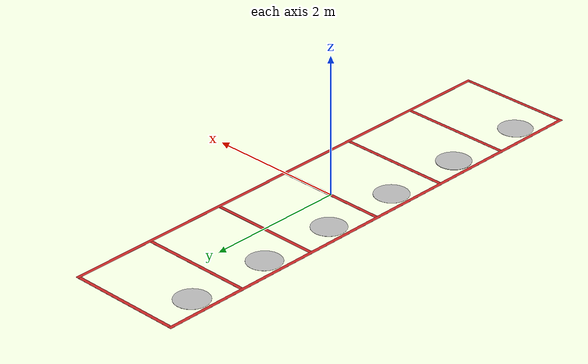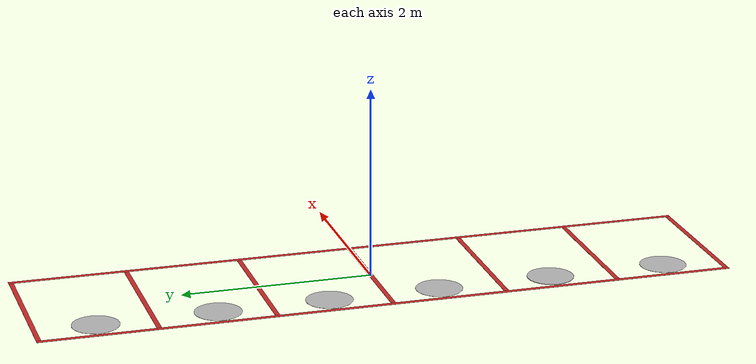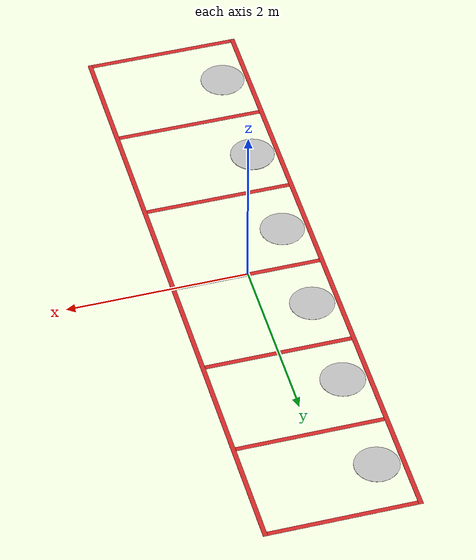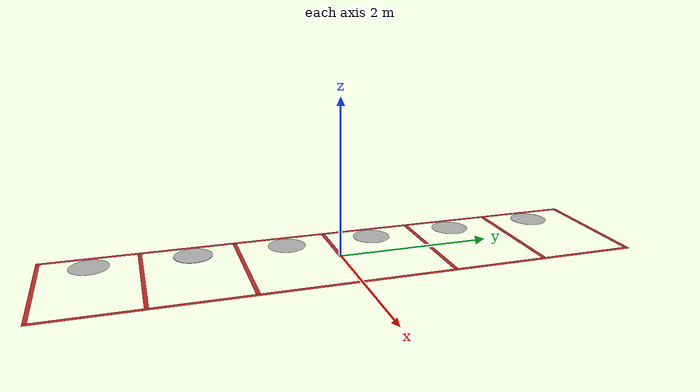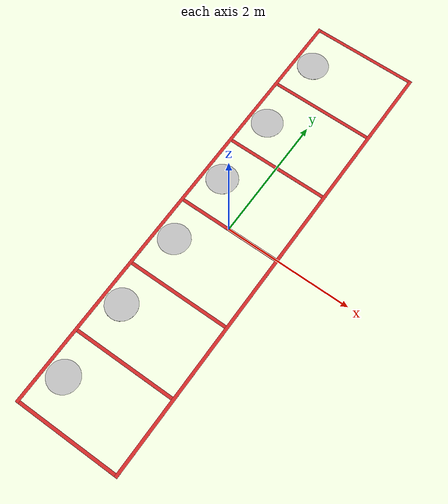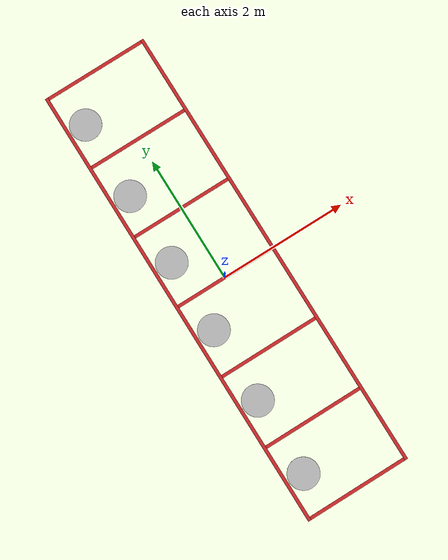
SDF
<?xml version='1.0'?>
<sdf version='1.6'>
  <model name='parkingArea_720x160'>
    <link name='link_3'>
      <inertial>
        <mass>1</mass>
        <inertia>
          <ixx>0.166667</ixx>
          <ixy>0</ixy>
          <ixz>0</ixz>
          <iyy>0.166667</iyy>
          <iyz>0</iyz>
          <izz>0.166667</izz>
        </inertia>
        <pose frame=''>0 0 0 0 -0 0</pose>
      </inertial>
      <pose frame=''>0 0 0 0 -0 0</pose>
      <gravity>1</gravity>
      <self_collide>0</self_collide>
      <kinematic>0</kinematic>
      <enable_wind>0</enable_wind>
      <visual name='visual'>
        <pose frame=''>0.825 0 0 0 -0 0</pose>
        <geometry>
          <box>
            <size>0.05 7.25 0.001</size>
          </box>
        </geometry>
        <material>
          <lighting>1</lighting>
          <script>
            <uri>file://media/materials/scripts/gazebo.material</uri>
            <name>Gazebo/Red</name>
          </script>
	 </material>
      </visual>
      <visual name='ModelPreview_6::link_3::visual_1'>
        <pose frame=''>-0.825 0 0 0 -0 0</pose>
        <geometry>
          <box>
            <size>0.05 7.25 0.001</size>
          </box>
        </geometry>
        <material>
          <lighting>1</lighting>
          <script>
            <uri>file://media/materials/scripts/gazebo.material</uri>
            <name>Gazebo/Red</name>
          </script>
        </material>
      </visual>
      <visual name='ModelPreview_6::link_3::visual_2'>
        <pose frame=''>0 3.6 0 0 -0 0</pose>
        <geometry>
          <box>
            <size>1.6 0.05 0.001</size>
          </box>
        </geometry>
        <material>
          <lighting>1</lighting>
          <script>
            <uri>file://media/materials/scripts/gazebo.material</uri>
            <name>Gazebo/Red</name>
          </script>
        </material>
      </visual>
      <visual name='ModelPreview_6::link_3::visual_3'>
        <pose frame=''>0 -3.6 0 0 -0 0</pose>
        <geometry>
          <box>
            <size>1.6 0.05 0.001</size>
          </box>
        </geometry>
        <material>
          <lighting>1</lighting>
          <script>
            <uri>file://media/materials/scripts/gazebo.material</uri>
            <name>Gazebo/Red</name>
          </script>
        </material>
      </visual>
      <visual name='ModelPreview_6::link_3::visual_4'>
        <pose frame=''>0 -2.4 0 0 -0 0</pose>
        <geometry>
          <box>
            <size>1.6 0.05 0.001</size>
          </box>
        </geometry>
        <material>
          <lighting>1</lighting>
          <script>
            <uri>file://media/materials/scripts/gazebo.material</uri>
            <name>Gazebo/Red</name>
          </script>
        </material>
      </visual>
      <visual name='ModelPreview_6::link_3::visual_5'>
        <pose frame=''>0 -1.2 0 0 -0 0</pose>
        <geometry>
          <box>
            <size>1.6 0.05 0.001</size>
          </box>
        </geometry>
        <material>
          <lighting>1</lighting>
          <script>
            <uri>file://media/materials/scripts/gazebo.material</uri>
            <name>Gazebo/Red</name>
          </script>
        </material>
      </visual>
      <visual name='ModelPreview_6::link_3::visual_6'>
        <pose frame=''>0 0 0 0 -0 0</pose>
        <geometry>
          <box>
            <size>1.6 0.05 0.001</size>
          </box>
        </geometry>
        <material>
          <lighting>1</lighting>
          <script>
            <uri>file://media/materials/scripts/gazebo.material</uri>
            <name>Gazebo/Red</name>
          </script>
        </material>
      </visual>
      <visual name='ModelPreview_6::link_3::visual_7'>
        <pose frame=''>0 1.2 0 0 -0 0</pose>
        <geometry>
          <box>
            <size>1.6 0.05 0.001</size>
          </box>
        </geometry>
        <material>
          <lighting>1</lighting>
          <script>
            <uri>file://media/materials/scripts/gazebo.material</uri>
            <name>Gazebo/Red</name>
          </script>
        </material>
      </visual>
      <visual name='ModelPreview_6::link_3::visual_8'>
        <pose frame=''>0 2.4 0 0 -0 0</pose>
        <geometry>
          <box>
            <size>1.6 0.05 0.001</size>
          </box>
        </geometry>
        <material>
          <lighting>1</lighting>
          <script>
            <uri>file://media/materials/scripts/gazebo.material</uri>
            <name>Gazebo/Red</name>
          </script>
        </material>
      </visual>
      <visual name='ModelPreview_6::link_3::visual_9'>
        <pose frame=''>-0.47 2.65 0 0 -0 1</pose>
        <geometry>
	   <mesh>
             <uri>model://parkingArea_720x160/model/model.dae</uri>
             <scale>0.266 0.266 0.266</scale>
           </mesh>
        </geometry>
        <material>
          <lighting>1</lighting>
        </material>
      </visual>
      <visual name='ModelPreview_6::link_3::visual_10'>
        <pose frame=''>-0.47 1.41 0 0 -0 1</pose>
        <geometry>
	   <mesh>
             <uri>model://parkingArea_720x160/model/model.dae</uri>
             <scale>0.266 0.266 0.266</scale>
           </mesh>
        </geometry>
        <material>
          <lighting>1</lighting>
        </material>
      </visual>
      <visual name='ModelPreview_6::link_3::visual_11'>
        <pose frame=''>-0.47 0.26 0 0 -0 1</pose>
        <geometry>
	   <mesh>
             <uri>model://parkingArea_720x160/model/model.dae</uri>
             <scale>0.266 0.266 0.266</scale>
           </mesh>
        </geometry>
        <material>
          <lighting>1</lighting>
        </material>
      </visual>
      <visual name='ModelPreview_6::link_3::visual_12'>
        <pose frame=''>-0.47 -0.9 0 0 -0 1</pose>
        <geometry>
	   <mesh>
             <uri>model://parkingArea_720x160/model/model.dae</uri>
             <scale>0.266 0.266 0.266</scale>
           </mesh>
        </geometry>
        <material>
          <lighting>1</lighting>
        </material>
      </visual>
      <visual name='ModelPreview_6::link_3::visual_13'>
        <pose frame=''>-0.47 -2.1 0 0 -0 1</pose>
        <geometry>
	   <mesh>
             <uri>model://parkingArea_720x160/model/model.dae</uri>
             <scale>0.266 0.266 0.8266</scale>
           </mesh>
        </geometry>
        <material>
          <lighting>1</lighting>
        </material>
      </visual>
      <visual name='ModelPreview_6::link_3::visual_14'>
        <pose frame=''>-0.47 -3.34 0 0 -0 1</pose>
        <geometry>
	   <mesh>
             <uri>model://parkingArea_720x160/model/model.dae</uri>
             <scale>0.266 0.266 0.266</scale>
           </mesh>
        </geometry>

      </visual>
      <collision name='collision'>
        <laser_retro>0</laser_retro>
        <max_contacts>10</max_contacts>
        <pose frame=''>1 0 0 0 -0 0</pose>
        <geometry>
          <box>
            <size>0.05 9 0.00001</size>
          </box>
        </geometry>
        <surface>
          <friction>
            <ode>
              <mu>1</mu>
              <mu2>1</mu2>
              <fdir1>0 0 0</fdir1>
              <slip1>0</slip1>
              <slip2>0</slip2>
            </ode>
            <torsional>
              <coefficient>1</coefficient>
              <patch_radius>0</patch_radius>
              <surface_radius>0</surface_radius>
              <use_patch_radius>1</use_patch_radius>
              <ode>
                <slip>0</slip>
              </ode>
            </torsional>
          </friction>
          <bounce>
            <restitution_coefficient>0</restitution_coefficient>
            <threshold>1e+06</threshold>
          </bounce>
          <contact>
            <collide_without_contact>0</collide_without_contact>
            <collide_without_contact_bitmask>1</collide_without_contact_bitmask>
            <collide_bitmask>1</collide_bitmask>
            <ode>
              <soft_cfm>0</soft_cfm>
              <soft_erp>0.2</soft_erp>
              <kp>1e+13</kp>
              <kd>1</kd>
              <max_vel>0.01</max_vel>
              <min_depth>0</min_depth>
            </ode>
            <bullet>
              <split_impulse>1</split_impulse>
              <split_impulse_penetration_threshold>-0.01</split_impulse_penetration_threshold>
              <soft_cfm>0</soft_cfm>
              <soft_erp>0.2</soft_erp>
              <kp>1e+13</kp>
              <kd>1</kd>
            </bullet>
          </contact>
        </surface>
      </collision>
      <collision name='collision_1'>
        <laser_retro>0</laser_retro>
        <max_contacts>10</max_contacts>
        <pose frame=''>-1 0 0 0 -0 0</pose>
        <geometry>
          <box>
            <size>0.05 9 0.00001</size>
          </box>
        </geometry>
        <surface>
          <friction>
            <ode>
              <mu>1</mu>
              <mu2>1</mu2>
              <fdir1>0 0 0</fdir1>
              <slip1>0</slip1>
              <slip2>0</slip2>
            </ode>
            <torsional>
              <coefficient>1</coefficient>
              <patch_radius>0</patch_radius>
              <surface_radius>0</surface_radius>
              <use_patch_radius>1</use_patch_radius>
              <ode>
                <slip>0</slip>
              </ode>
            </torsional>
          </friction>
          <bounce>
            <restitution_coefficient>0</restitution_coefficient>
            <threshold>1e+06</threshold>
          </bounce>
          <contact>
            <collide_without_contact>0</collide_without_contact>
            <collide_without_contact_bitmask>1</collide_without_contact_bitmask>
            <collide_bitmask>1</collide_bitmask>
            <ode>
              <soft_cfm>0</soft_cfm>
              <soft_erp>0.2</soft_erp>
              <kp>1e+13</kp>
              <kd>1</kd>
              <max_vel>0.01</max_vel>
              <min_depth>0</min_depth>
            </ode>
            <bullet>
              <split_impulse>1</split_impulse>
              <split_impulse_penetration_threshold>-0.01</split_impulse_penetration_threshold>
              <soft_cfm>0</soft_cfm>
              <soft_erp>0.2</soft_erp>
              <kp>1e+13</kp>
              <kd>1</kd>
            </bullet>
          </contact>
        </surface>
      </collision>
      <collision name='collision_2'>
        <laser_retro>0</laser_retro>
        <max_contacts>10</max_contacts>
        <pose frame=''>0 4.5 0 0 -0 0</pose>
        <geometry>
          <box>
            <size>1.6 0.05 0.00001</size>
          </box>
        </geometry>
        <surface>
          <friction>
            <ode>
              <mu>1</mu>
              <mu2>1</mu2>
              <fdir1>0 0 0</fdir1>
              <slip1>0</slip1>
              <slip2>0</slip2>
            </ode>
            <torsional>
              <coefficient>1</coefficient>
              <patch_radius>0</patch_radius>
              <surface_radius>0</surface_radius>
              <use_patch_radius>1</use_patch_radius>
              <ode>
                <slip>0</slip>
              </ode>
            </torsional>
          </friction>
          <bounce>
            <restitution_coefficient>0</restitution_coefficient>
            <threshold>1e+06</threshold>
          </bounce>
          <contact>
            <collide_without_contact>0</collide_without_contact>
            <collide_without_contact_bitmask>1</collide_without_contact_bitmask>
            <collide_bitmask>1</collide_bitmask>
            <ode>
              <soft_cfm>0</soft_cfm>
              <soft_erp>0.2</soft_erp>
              <kp>1e+13</kp>
              <kd>1</kd>
              <max_vel>0.01</max_vel>
              <min_depth>0</min_depth>
            </ode>
            <bullet>
              <split_impulse>1</split_impulse>
              <split_impulse_penetration_threshold>-0.01</split_impulse_penetration_threshold>
              <soft_cfm>0</soft_cfm>
              <soft_erp>0.2</soft_erp>
              <kp>1e+13</kp>
              <kd>1</kd>
            </bullet>
          </contact>
        </surface>
      </collision>
      <collision name='collision_3'>
        <laser_retro>0</laser_retro>
        <max_contacts>10</max_contacts>
        <pose frame=''>0 3 0 0 -0 0</pose>
        <geometry>
          <box>
            <size>1.6 0.05 0.00001</size>
          </box>
        </geometry>
        <surface>
          <friction>
            <ode>
              <mu>1</mu>
              <mu2>1</mu2>
              <fdir1>0 0 0</fdir1>
              <slip1>0</slip1>
              <slip2>0</slip2>
            </ode>
            <torsional>
              <coefficient>1</coefficient>
              <patch_radius>0</patch_radius>
              <surface_radius>0</surface_radius>
              <use_patch_radius>1</use_patch_radius>
              <ode>
                <slip>0</slip>
              </ode>
            </torsional>
          </friction>
          <bounce>
            <restitution_coefficient>0</restitution_coefficient>
            <threshold>1e+06</threshold>
          </bounce>
          <contact>
            <collide_without_contact>0</collide_without_contact>
            <collide_without_contact_bitmask>1</collide_without_contact_bitmask>
            <collide_bitmask>1</collide_bitmask>
            <ode>
              <soft_cfm>0</soft_cfm>
              <soft_erp>0.2</soft_erp>
              <kp>1e+13</kp>
              <kd>1</kd>
              <max_vel>0.01</max_vel>
              <min_depth>0</min_depth>
            </ode>
            <bullet>
              <split_impulse>1</split_impulse>
              <split_impulse_penetration_threshold>-0.01</split_impulse_penetration_threshold>
              <soft_cfm>0</soft_cfm>
              <soft_erp>0.2</soft_erp>
              <kp>1e+13</kp>
              <kd>1</kd>
            </bullet>
          </contact>
        </surface>
      </collision>
      <collision name='collision_4'>
        <laser_retro>0</laser_retro>
        <max_contacts>10</max_contacts>
        <pose frame=''>0 1.5 0 0 -0 0</pose>
        <geometry>
          <box>
            <size>1.6 0.05 0.00001</size>
          </box>
        </geometry>
        <surface>
          <friction>
            <ode>
              <mu>1</mu>
              <mu2>1</mu2>
              <fdir1>0 0 0</fdir1>
              <slip1>0</slip1>
              <slip2>0</slip2>
            </ode>
            <torsional>
              <coefficient>1</coefficient>
              <patch_radius>0</patch_radius>
              <surface_radius>0</surface_radius>
              <use_patch_radius>1</use_patch_radius>
              <ode>
                <slip>0</slip>
              </ode>
            </torsional>
          </friction>
          <bounce>
            <restitution_coefficient>0</restitution_coefficient>
            <threshold>1e+06</threshold>
          </bounce>
          <contact>
            <collide_without_contact>0</collide_without_contact>
            <collide_without_contact_bitmask>1</collide_without_contact_bitmask>
            <collide_bitmask>1</collide_bitmask>
            <ode>
              <soft_cfm>0</soft_cfm>
              <soft_erp>0.2</soft_erp>
              <kp>1e+13</kp>
              <kd>1</kd>
              <max_vel>0.01</max_vel>
              <min_depth>0</min_depth>
            </ode>
            <bullet>
              <split_impulse>1</split_impulse>
              <split_impulse_penetration_threshold>-0.01</split_impulse_penetration_threshold>
              <soft_cfm>0</soft_cfm>
              <soft_erp>0.2</soft_erp>
              <kp>1e+13</kp>
              <kd>1</kd>
            </bullet>
          </contact>
        </surface>
      </collision>
      <collision name='collision_5'>
        <laser_retro>0</laser_retro>
        <max_contacts>10</max_contacts>
        <pose frame=''>0 0 0 0 -0 0</pose>
        <geometry>
          <box>
            <size>1.6 0.05 0.00001</size>
          </box>
        </geometry>
        <surface>
          <friction>
            <ode>
              <mu>1</mu>
              <mu2>1</mu2>
              <fdir1>0 0 0</fdir1>
              <slip1>0</slip1>
              <slip2>0</slip2>
            </ode>
            <torsional>
              <coefficient>1</coefficient>
              <patch_radius>0</patch_radius>
              <surface_radius>0</surface_radius>
              <use_patch_radius>1</use_patch_radius>
              <ode>
                <slip>0</slip>
              </ode>
            </torsional>
          </friction>
          <bounce>
            <restitution_coefficient>0</restitution_coefficient>
            <threshold>1e+06</threshold>
          </bounce>
          <contact>
            <collide_without_contact>0</collide_without_contact>
            <collide_without_contact_bitmask>1</collide_without_contact_bitmask>
            <collide_bitmask>1</collide_bitmask>
            <ode>
              <soft_cfm>0</soft_cfm>
              <soft_erp>0.2</soft_erp>
              <kp>1e+13</kp>
              <kd>1</kd>
              <max_vel>0.01</max_vel>
              <min_depth>0</min_depth>
            </ode>
            <bullet>
              <split_impulse>1</split_impulse>
              <split_impulse_penetration_threshold>-0.01</split_impulse_penetration_threshold>
              <soft_cfm>0</soft_cfm>
              <soft_erp>0.2</soft_erp>
              <kp>1e+13</kp>
              <kd>1</kd>
            </bullet>
          </contact>
        </surface>
      </collision>
      <collision name='collision_6'>
        <laser_retro>0</laser_retro>
        <max_contacts>10</max_contacts>
        <pose frame=''>0 -1.5 0 0 -0 0</pose>
        <geometry>
          <box>
            <size>1.6 0.05 0.00001</size>
          </box>
        </geometry>
        <surface>
          <friction>
            <ode>
              <mu>1</mu>
              <mu2>1</mu2>
              <fdir1>0 0 0</fdir1>
              <slip1>0</slip1>
              <slip2>0</slip2>
            </ode>
            <torsional>
              <coefficient>1</coefficient>
              <patch_radius>0</patch_radius>
              <surface_radius>0</surface_radius>
              <use_patch_radius>1</use_patch_radius>
              <ode>
                <slip>0</slip>
              </ode>
            </torsional>
          </friction>
          <bounce>
            <restitution_coefficient>0</restitution_coefficient>
            <threshold>1e+06</threshold>
          </bounce>
          <contact>
            <collide_without_contact>0</collide_without_contact>
            <collide_without_contact_bitmask>1</collide_without_contact_bitmask>
            <collide_bitmask>1</collide_bitmask>
            <ode>
              <soft_cfm>0</soft_cfm>
              <soft_erp>0.2</soft_erp>
              <kp>1e+13</kp>
              <kd>1</kd>
              <max_vel>0.01</max_vel>
              <min_depth>0</min_depth>
            </ode>
            <bullet>
              <split_impulse>1</split_impulse>
              <split_impulse_penetration_threshold>-0.01</split_impulse_penetration_threshold>
              <soft_cfm>0</soft_cfm>
              <soft_erp>0.2</soft_erp>
              <kp>1e+13</kp>
              <kd>1</kd>
            </bullet>
          </contact>
        </surface>
      </collision>
      <collision name='collision_7'>
        <laser_retro>0</laser_retro>
        <max_contacts>10</max_contacts>
        <pose frame=''>0 -3 0 0 -0 0</pose>
        <geometry>
          <box>
            <size>1.6 0.05 0.00001</size>
          </box>
        </geometry>
        <surface>
          <friction>
            <ode>
              <mu>1</mu>
              <mu2>1</mu2>
              <fdir1>0 0 0</fdir1>
              <slip1>0</slip1>
              <slip2>0</slip2>
            </ode>
            <torsional>
              <coefficient>1</coefficient>
              <patch_radius>0</patch_radius>
              <surface_radius>0</surface_radius>
              <use_patch_radius>1</use_patch_radius>
              <ode>
                <slip>0</slip>
              </ode>
            </torsional>
          </friction>
          <bounce>
            <restitution_coefficient>0</restitution_coefficient>
            <threshold>1e+06</threshold>
          </bounce>
          <contact>
            <collide_without_contact>0</collide_without_contact>
            <collide_without_contact_bitmask>1</collide_without_contact_bitmask>
            <collide_bitmask>1</collide_bitmask>
            <ode>
              <soft_cfm>0</soft_cfm>
              <soft_erp>0.2</soft_erp>
              <kp>1e+13</kp>
              <kd>1</kd>
              <max_vel>0.01</max_vel>
              <min_depth>0</min_depth>
            </ode>
            <bullet>
              <split_impulse>1</split_impulse>
              <split_impulse_penetration_threshold>-0.01</split_impulse_penetration_threshold>
              <soft_cfm>0</soft_cfm>
              <soft_erp>0.2</soft_erp>
              <kp>1e+13</kp>
              <kd>1</kd>
            </bullet>
          </contact>
        </surface>
      </collision>
      <collision name='collision_8'>
        <laser_retro>0</laser_retro>
        <max_contacts>10</max_contacts>
        <pose frame=''>0 -4.5 0 0 -0 0</pose>
        <geometry>
          <box>
            <size>1.6 0.05 0.00001</size>
          </box>
        </geometry>
        <surface>
          <friction>
            <ode>
              <mu>1</mu>
              <mu2>1</mu2>
              <fdir1>0 0 0</fdir1>
              <slip1>0</slip1>
              <slip2>0</slip2>
            </ode>
            <torsional>
              <coefficient>1</coefficient>
              <patch_radius>0</patch_radius>
              <surface_radius>0</surface_radius>
              <use_patch_radius>1</use_patch_radius>
              <ode>
                <slip>0</slip>
              </ode>
            </torsional>
          </friction>
          <bounce>
            <restitution_coefficient>0</restitution_coefficient>
            <threshold>1e+06</threshold>
          </bounce>
          <contact>
            <collide_without_contact>0</collide_without_contact>
            <collide_without_contact_bitmask>1</collide_without_contact_bitmask>
            <collide_bitmask>1</collide_bitmask>
            <ode>
              <soft_cfm>0</soft_cfm>
              <soft_erp>0.2</soft_erp>
              <kp>1e+13</kp>
              <kd>1</kd>
              <max_vel>0.01</max_vel>
              <min_depth>0</min_depth>
            </ode>
            <bullet>
              <split_impulse>1</split_impulse>
              <split_impulse_penetration_threshold>-0.01</split_impulse_penetration_threshold>
              <soft_cfm>0</soft_cfm>
              <soft_erp>0.2</soft_erp>
              <kp>1e+13</kp>
              <kd>1</kd>
            </bullet>
          </contact>
        </surface>
      </collision>
      <collision name='collision_9'>
        <laser_retro>0</laser_retro>
        <max_contacts>10</max_contacts>
        <pose frame=''>-0.65 3.75 0 0 -0 0</pose>
        <geometry>
          <cylinder>
            <radius>0.25</radius>
            <length>0.00001</length>
          </cylinder>
        </geometry>
        <surface>
          <friction>
            <ode>
              <mu>1</mu>
              <mu2>1</mu2>
              <fdir1>0 0 0</fdir1>
              <slip1>0</slip1>
              <slip2>0</slip2>
            </ode>
            <torsional>
              <coefficient>1</coefficient>
              <patch_radius>0</patch_radius>
              <surface_radius>0</surface_radius>
              <use_patch_radius>1</use_patch_radius>
              <ode>
                <slip>0</slip>
              </ode>
            </torsional>
          </friction>
          <bounce>
            <restitution_coefficient>0</restitution_coefficient>
            <threshold>1e+06</threshold>
          </bounce>
          <contact>
            <collide_without_contact>0</collide_without_contact>
            <collide_without_contact_bitmask>1</collide_without_contact_bitmask>
            <collide_bitmask>1</collide_bitmask>
            <ode>
              <soft_cfm>0</soft_cfm>
              <soft_erp>0.2</soft_erp>
              <kp>1e+13</kp>
              <kd>1</kd>
              <max_vel>0.01</max_vel>
              <min_depth>0</min_depth>
            </ode>
            <bullet>
              <split_impulse>1</split_impulse>
              <split_impulse_penetration_threshold>-0.01</split_impulse_penetration_threshold>
              <soft_cfm>0</soft_cfm>
              <soft_erp>0.2</soft_erp>
              <kp>1e+13</kp>
              <kd>1</kd>
            </bullet>
          </contact>
        </surface>
      </collision>
      <collision name='collision_10'>
        <laser_retro>0</laser_retro>
        <max_contacts>10</max_contacts>
        <pose frame=''>-0.65 2.25 0 0 -0 0</pose>
        <geometry>
          <cylinder>
            <radius>0.25</radius>
            <length>0.00001</length>
          </cylinder>
        </geometry>
        <surface>
          <friction>
            <ode>
              <mu>1</mu>
              <mu2>1</mu2>
              <fdir1>0 0 0</fdir1>
              <slip1>0</slip1>
              <slip2>0</slip2>
            </ode>
            <torsional>
              <coefficient>1</coefficient>
              <patch_radius>0</patch_radius>
              <surface_radius>0</surface_radius>
              <use_patch_radius>1</use_patch_radius>
              <ode>
                <slip>0</slip>
              </ode>
            </torsional>
          </friction>
          <bounce>
            <restitution_coefficient>0</restitution_coefficient>
            <threshold>1e+06</threshold>
          </bounce>
          <contact>
            <collide_without_contact>0</collide_without_contact>
            <collide_without_contact_bitmask>1</collide_without_contact_bitmask>
            <collide_bitmask>1</collide_bitmask>
            <ode>
              <soft_cfm>0</soft_cfm>
              <soft_erp>0.2</soft_erp>
              <kp>1e+13</kp>
              <kd>1</kd>
              <max_vel>0.01</max_vel>
              <min_depth>0</min_depth>
            </ode>
            <bullet>
              <split_impulse>1</split_impulse>
              <split_impulse_penetration_threshold>-0.01</split_impulse_penetration_threshold>
              <soft_cfm>0</soft_cfm>
              <soft_erp>0.2</soft_erp>
              <kp>1e+13</kp>
              <kd>1</kd>
            </bullet>
          </contact>
        </surface>
      </collision>
      <collision name='collision_11'>
        <laser_retro>0</laser_retro>
        <max_contacts>10</max_contacts>
        <pose frame=''>-0.65 0.75 0 0 -0 0</pose>
        <geometry>
          <cylinder>
            <radius>0.25</radius>
            <length>0.00001</length>
          </cylinder>
        </geometry>
        <surface>
          <friction>
            <ode>
              <mu>1</mu>
              <mu2>1</mu2>
              <fdir1>0 0 0</fdir1>
              <slip1>0</slip1>
              <slip2>0</slip2>
            </ode>
            <torsional>
              <coefficient>1</coefficient>
              <patch_radius>0</patch_radius>
              <surface_radius>0</surface_radius>
              <use_patch_radius>1</use_patch_radius>
              <ode>
                <slip>0</slip>
              </ode>
            </torsional>
          </friction>
          <bounce>
            <restitution_coefficient>0</restitution_coefficient>
            <threshold>1e+06</threshold>
          </bounce>
          <contact>
            <collide_without_contact>0</collide_without_contact>
            <collide_without_contact_bitmask>1</collide_without_contact_bitmask>
            <collide_bitmask>1</collide_bitmask>
            <ode>
              <soft_cfm>0</soft_cfm>
              <soft_erp>0.2</soft_erp>
              <kp>1e+13</kp>
              <kd>1</kd>
              <max_vel>0.01</max_vel>
              <min_depth>0</min_depth>
            </ode>
            <bullet>
              <split_impulse>1</split_impulse>
              <split_impulse_penetration_threshold>-0.01</split_impulse_penetration_threshold>
              <soft_cfm>0</soft_cfm>
              <soft_erp>0.2</soft_erp>
              <kp>1e+13</kp>
              <kd>1</kd>
            </bullet>
          </contact>
        </surface>
      </collision>
      <collision name='collision_12'>
        <laser_retro>0</laser_retro>
        <max_contacts>10</max_contacts>
        <pose frame=''>-0.65 -0.75 0 0 -0 0</pose>
        <geometry>
          <cylinder>
            <radius>0.25</radius>
            <length>0.00001</length>
          </cylinder>
        </geometry>
        <surface>
          <friction>
            <ode>
              <mu>1</mu>
              <mu2>1</mu2>
              <fdir1>0 0 0</fdir1>
              <slip1>0</slip1>
              <slip2>0</slip2>
            </ode>
            <torsional>
              <coefficient>1</coefficient>
              <patch_radius>0</patch_radius>
              <surface_radius>0</surface_radius>
              <use_patch_radius>1</use_patch_radius>
              <ode>
                <slip>0</slip>
              </ode>
            </torsional>
          </friction>
          <bounce>
            <restitution_coefficient>0</restitution_coefficient>
            <threshold>1e+06</threshold>
          </bounce>
          <contact>
            <collide_without_contact>0</collide_without_contact>
            <collide_without_contact_bitmask>1</collide_without_contact_bitmask>
            <collide_bitmask>1</collide_bitmask>
            <ode>
              <soft_cfm>0</soft_cfm>
              <soft_erp>0.2</soft_erp>
              <kp>1e+13</kp>
              <kd>1</kd>
              <max_vel>0.01</max_vel>
              <min_depth>0</min_depth>
            </ode>
            <bullet>
              <split_impulse>1</split_impulse>
              <split_impulse_penetration_threshold>-0.01</split_impulse_penetration_threshold>
              <soft_cfm>0</soft_cfm>
              <soft_erp>0.2</soft_erp>
              <kp>1e+13</kp>
              <kd>1</kd>
            </bullet>
          </contact>
        </surface>
      </collision>
      <collision name='collision_13'>
        <laser_retro>0</laser_retro>
        <max_contacts>10</max_contacts>
        <pose frame=''>-0.65 -2.25 0 0 -0 0</pose>
        <geometry>
          <cylinder>
            <radius>0.25</radius>
            <length>0.00001</length>
          </cylinder>
        </geometry>
        <surface>
          <friction>
            <ode>
              <mu>1</mu>
              <mu2>1</mu2>
              <fdir1>0 0 0</fdir1>
              <slip1>0</slip1>
              <slip2>0</slip2>
            </ode>
            <torsional>
              <coefficient>1</coefficient>
              <patch_radius>0</patch_radius>
              <surface_radius>0</surface_radius>
              <use_patch_radius>1</use_patch_radius>
              <ode>
                <slip>0</slip>
              </ode>
            </torsional>
          </friction>
          <bounce>
            <restitution_coefficient>0</restitution_coefficient>
            <threshold>1e+06</threshold>
          </bounce>
          <contact>
            <collide_without_contact>0</collide_without_contact>
            <collide_without_contact_bitmask>1</collide_without_contact_bitmask>
            <collide_bitmask>1</collide_bitmask>
            <ode>
              <soft_cfm>0</soft_cfm>
              <soft_erp>0.2</soft_erp>
              <kp>1e+13</kp>
              <kd>1</kd>
              <max_vel>0.01</max_vel>
              <min_depth>0</min_depth>
            </ode>
            <bullet>
              <split_impulse>1</split_impulse>
              <split_impulse_penetration_threshold>-0.01</split_impulse_penetration_threshold>
              <soft_cfm>0</soft_cfm>
              <soft_erp>0.2</soft_erp>
              <kp>1e+13</kp>
              <kd>1</kd>
            </bullet>
          </contact>
        </surface>
      </collision>
      <collision name='collision_14'>
        <laser_retro>0</laser_retro>
        <max_contacts>10</max_contacts>
        <pose frame=''>-0.65 -3.75 0 0 -0 0</pose>
        <geometry>
          <cylinder>
            <radius>0.25</radius>
            <length>0.00001</length>
          </cylinder>
        </geometry>
        <surface>
          <friction>
            <ode>
              <mu>1</mu>
              <mu2>1</mu2>
              <fdir1>0 0 0</fdir1>
              <slip1>0</slip1>
              <slip2>0</slip2>
            </ode>
            <torsional>
              <coefficient>1</coefficient>
              <patch_radius>0</patch_radius>
              <surface_radius>0</surface_radius>
              <use_patch_radius>1</use_patch_radius>
              <ode>
                <slip>0</slip>
              </ode>
            </torsional>
          </friction>
          <bounce>
            <restitution_coefficient>0</restitution_coefficient>
            <threshold>1e+06</threshold>
          </bounce>
          <contact>
            <collide_without_contact>0</collide_without_contact>
            <collide_without_contact_bitmask>1</collide_without_contact_bitmask>
            <collide_bitmask>1</collide_bitmask>
            <ode>
              <soft_cfm>0</soft_cfm>
              <soft_erp>0.2</soft_erp>
              <kp>1e+13</kp>
              <kd>1</kd>
              <max_vel>0.01</max_vel>
              <min_depth>0</min_depth>
            </ode>
            <bullet>
              <split_impulse>1</split_impulse>
              <split_impulse_penetration_threshold>-0.01</split_impulse_penetration_threshold>
              <soft_cfm>0</soft_cfm>
              <soft_erp>0.2</soft_erp>
              <kp>1e+13</kp>
              <kd>1</kd>
            </bullet>
          </contact>
        </surface>
      </collision>
    </link>
    <static>1</static>
    <allow_auto_disable>1</allow_auto_disable>
  </model>
</sdf>
